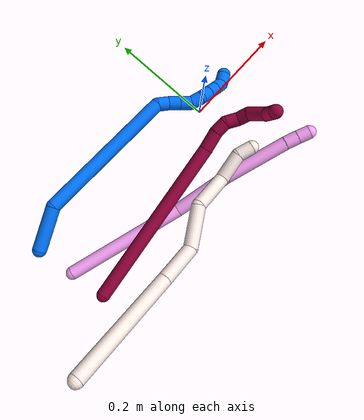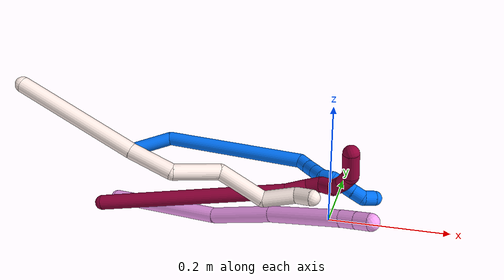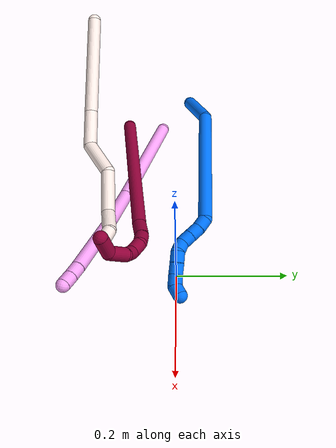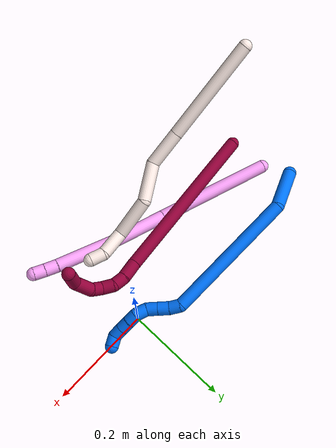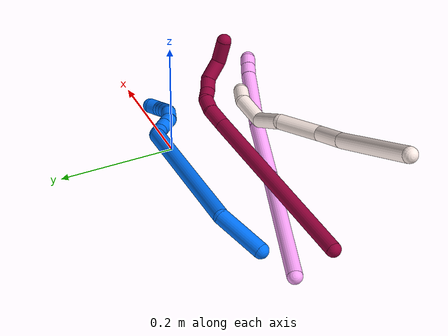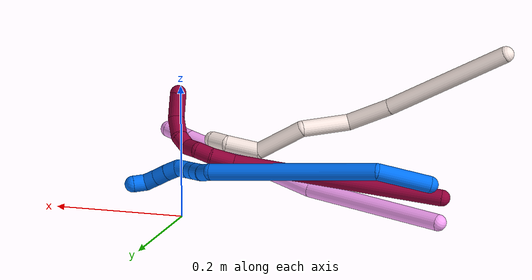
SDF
<sdf version="1.7">
 <world name="default">
  <model name="4">
   <static>0</static>
   <link name="4">
    <collision name="collision-cylinder-e_1_1_4">
     <pose>0.084315 -0.027856 -0.070144 2.76356 0.840679 2.33281</pose>
     <geometry><cylinder><radius>0.0125</radius><length>0.22632</length></cylinder></geometry>
     <surface>
      <friction><ode><mu>1.16</mu><mu2>1.16</mu2><slip1>0</slip1><slip2>0</slip2></ode></friction>
      <contact><ode><kp>1e+06</kp><kd>1</kd><max_vel>0</max_vel><min_depth>0.001</min_depth></ode></contact>
     </surface>
    </collision>
    <visual name="visual-cylinder-e_1_1_4">
     <pose>0.084315 -0.027856 -0.070144 2.76356 0.840679 2.33281</pose>
     <geometry><cylinder><radius>0.0125</radius><length>0.22632</length></cylinder></geometry>
     <material><ambient>1 0.65098 0.996078 1</ambient></material>
    </visual>
    <collision name="collision-cylinder-e_2_4_5">
     <pose>0.214124 -0.0688 -0.16617 2.67341 1.00326 2.32128</pose>
     <geometry><cylinder><radius>0.0125</radius><length>0.107903</length></cylinder></geometry>
     <surface>
      <friction><ode><mu>1.16</mu><mu2>1.16</mu2><slip1>0</slip1><slip2>0</slip2></ode></friction>
      <contact><ode><kp>1e+06</kp><kd>1</kd><max_vel>0</max_vel><min_depth>0.001</min_depth></ode></contact>
     </surface>
    </collision>
    <visual name="visual-cylinder-e_2_4_5">
     <pose>0.214124 -0.0688 -0.16617 2.67341 1.00326 2.32128</pose>
     <geometry><cylinder><radius>0.0125</radius><length>0.107903</length></cylinder></geometry>
     <material><ambient>1 0.65098 0.996078 1</ambient></material>
    </visual>
    <collision name="collision-cylinder-e_3_5_6">
     <pose>0.307087 -0.100001 -0.223586 2.6202 0.917065 2.15067</pose>
     <geometry><cylinder><radius>0.0125</radius><length>0.119598</length></cylinder></geometry>
     <surface>
      <friction><ode><mu>1.16</mu><mu2>1.16</mu2><slip1>0</slip1><slip2>0</slip2></ode></friction>
      <contact><ode><kp>1e+06</kp><kd>1</kd><max_vel>0</max_vel><min_depth>0.001</min_depth></ode></contact>
     </surface>
    </collision>
    <visual name="visual-cylinder-e_3_5_6">
     <pose>0.307087 -0.100001 -0.223586 2.6202 0.917065 2.15067</pose>
     <geometry><cylinder><radius>0.0125</radius><length>0.119598</length></cylinder></geometry>
     <material><ambient>1 0.65098 0.996078 1</ambient></material>
    </visual>
    <collision name="collision-cylinder-e_4_6_7">
     <pose>0.363669 -0.122438 -0.261773 2.56537 0.854468 1.98753</pose>
     <geometry><cylinder><radius>0.0125</radius><length>0.024163</length></cylinder></geometry>
     <surface>
      <friction><ode><mu>1.16</mu><mu2>1.16</mu2><slip1>0</slip1><slip2>0</slip2></ode></friction>
      <contact><ode><kp>1e+06</kp><kd>1</kd><max_vel>0</max_vel><min_depth>0.001</min_depth></ode></contact>
     </surface>
    </collision>
    <visual name="visual-cylinder-e_4_6_7">
     <pose>0.363669 -0.122438 -0.261773 2.56537 0.854468 1.98753</pose>
     <geometry><cylinder><radius>0.0125</radius><length>0.024163</length></cylinder></geometry>
     <material><ambient>1 0.65098 0.996078 1</ambient></material>
    </visual>
    <collision name="collision-cylinder-e_5_7_2">
     <pose>0.380979 -0.131045 -0.274391 2.51872 0.840161 1.89264</pose>
     <geometry><cylinder><radius>0.0125</radius><length>0.022015</length></cylinder></geometry>
     <surface>
      <friction><ode><mu>1.16</mu><mu2>1.16</mu2><slip1>0</slip1><slip2>0</slip2></ode></friction>
      <contact><ode><kp>1e+06</kp><kd>1</kd><max_vel>0</max_vel><min_depth>0.001</min_depth></ode></contact>
     </surface>
    </collision>
    <visual name="visual-cylinder-e_5_7_2">
     <pose>0.380979 -0.131045 -0.274391 2.51872 0.840161 1.89264</pose>
     <geometry><cylinder><radius>0.0125</radius><length>0.022015</length></cylinder></geometry>
     <material><ambient>1 0.65098 0.996078 1</ambient></material>
    </visual>
    <collision name="collision-sphere-2">
     <pose>0.389177 -0.135331 -0.280357 0 -0 0</pose>
     <geometry><sphere><radius>0.0125</radius></sphere></geometry>
     <surface>
      <friction><ode><mu>1.16</mu><mu2>1.16</mu2><slip1>0</slip1><slip2>0</slip2></ode></friction>
      <contact><ode><kp>1e+06</kp><kd>1</kd><max_vel>0</max_vel><min_depth>0.001</min_depth></ode></contact>
     </surface>
    </collision>
    <visual name="visual-sphere-2">
     <pose>0.389177 -0.135331 -0.280357 0 -0 0</pose>
     <geometry><sphere><radius>0.0125</radius></sphere></geometry>
     <material><ambient>1 0.65098 0.996078 1</ambient></material>
    </visual>
    <collision name="collision-sphere-7">
     <pose>0.372781 -0.12676 -0.268425 0 -0 0</pose>
     <geometry><sphere><radius>0.0125</radius></sphere></geometry>
     <surface>
      <friction><ode><mu>1.16</mu><mu2>1.16</mu2><slip1>0</slip1><slip2>0</slip2></ode></friction>
      <contact><ode><kp>1e+06</kp><kd>1</kd><max_vel>0</max_vel><min_depth>0.001</min_depth></ode></contact>
     </surface>
    </collision>
    <visual name="visual-sphere-7">
     <pose>0.372781 -0.12676 -0.268425 0 -0 0</pose>
     <geometry><sphere><radius>0.0125</radius></sphere></geometry>
     <material><ambient>1 0.65098 0.996078 1</ambient></material>
    </visual>
    <collision name="collision-sphere-6">
     <pose>0.354557 -0.118115 -0.255121 0 -0 0</pose>
     <geometry><sphere><radius>0.0125</radius></sphere></geometry>
     <surface>
      <friction><ode><mu>1.16</mu><mu2>1.16</mu2><slip1>0</slip1><slip2>0</slip2></ode></friction>
      <contact><ode><kp>1e+06</kp><kd>1</kd><max_vel>0</max_vel><min_depth>0.001</min_depth></ode></contact>
     </surface>
    </collision>
    <visual name="visual-sphere-6">
     <pose>0.354557 -0.118115 -0.255121 0 -0 0</pose>
     <geometry><sphere><radius>0.0125</radius></sphere></geometry>
     <material><ambient>1 0.65098 0.996078 1</ambient></material>
    </visual>
    <collision name="collision-sphere-5">
     <pose>0.259617 -0.081888 -0.192051 0 -0 0</pose>
     <geometry><sphere><radius>0.0125</radius></sphere></geometry>
     <surface>
      <friction><ode><mu>1.16</mu><mu2>1.16</mu2><slip1>0</slip1><slip2>0</slip2></ode></friction>
      <contact><ode><kp>1e+06</kp><kd>1</kd><max_vel>0</max_vel><min_depth>0.001</min_depth></ode></contact>
     </surface>
    </collision>
    <visual name="visual-sphere-5">
     <pose>0.259617 -0.081888 -0.192051 0 -0 0</pose>
     <geometry><sphere><radius>0.0125</radius></sphere></geometry>
     <material><ambient>1 0.65098 0.996078 1</ambient></material>
    </visual>
    <collision name="collision-sphere-1">
     <geometry><sphere><radius>0.0125</radius></sphere></geometry>
     <surface>
      <friction><ode><mu>1.16</mu><mu2>1.16</mu2><slip1>0</slip1><slip2>0</slip2></ode></friction>
      <contact><ode><kp>1e+06</kp><kd>1</kd><max_vel>0</max_vel><min_depth>0.001</min_depth></ode></contact>
     </surface>
    </collision>
    <visual name="visual-sphere-1">
     <geometry><sphere><radius>0.0125</radius></sphere></geometry>
     <material><ambient>1 0.65098 0.996078 1</ambient></material>
    </visual>
    <collision name="collision-sphere-4">
     <pose>0.16863 -0.055712 -0.140288 0 -0 0</pose>
     <geometry><sphere><radius>0.0125</radius></sphere></geometry>
     <surface>
      <friction><ode><mu>1.16</mu><mu2>1.16</mu2><slip1>0</slip1><slip2>0</slip2></ode></friction>
      <contact><ode><kp>1e+06</kp><kd>1</kd><max_vel>0</max_vel><min_depth>0.001</min_depth></ode></contact>
     </surface>
    </collision>
    <visual name="visual-sphere-4">
     <pose>0.16863 -0.055712 -0.140288 0 -0 0</pose>
     <geometry><sphere><radius>0.0125</radius></sphere></geometry>
     <material><ambient>1 0.65098 0.996078 1</ambient></material>
    </visual>
    <inertial>
     <pose>0.192177 -0.063063 -0.145824 0 -0 0</pose>
     <mass>0.5</mass>
     <inertia>
      <ixx>8.2e-05</ixx>
      <ixy>0</ixy>
      <ixz>0</ixz>
      <iyy>0.001617</iyy>
      <iyz>0</iyz>
      <izz>-0.000647</izz>
     </inertia>
    </inertial>
   </link>
   <pose>-0.387698 -0.032394 0.011499 -0.366137 -0.674695 0.167584</pose>
  </model>
  <model name="8">
   <static>0</static>
   <link name="8">
    <collision name="collision-cylinder-e_1_1_4">
     <pose>0.15341 -0.000258 -0.044403 3.13579 1.28905 3.13387</pose>
     <geometry><cylinder><radius>0.0125</radius><length>0.319415</length></cylinder></geometry>
     <surface>
      <friction><ode><mu>1.16</mu><mu2>1.16</mu2><slip1>0</slip1><slip2>0</slip2></ode></friction>
      <contact><ode><kp>1e+06</kp><kd>1</kd><max_vel>0</max_vel><min_depth>0.001</min_depth></ode></contact>
     </surface>
    </collision>
    <visual name="visual-cylinder-e_1_1_4">
     <pose>0.15341 -0.000258 -0.044403 3.13579 1.28905 3.13387</pose>
     <geometry><cylinder><radius>0.0125</radius><length>0.319415</length></cylinder></geometry>
     <material><ambient>0.584314 0 0.227451 1</ambient></material>
    </visual>
    <collision name="collision-cylinder-e_2_4_5">
     <pose>0.324599 -0.000673 -0.091149 3.07437 1.4395 3.06492</pose>
     <geometry><cylinder><radius>0.0125</radius><length>0.035865</length></cylinder></geometry>
     <surface>
      <friction><ode><mu>1.16</mu><mu2>1.16</mu2><slip1>0</slip1><slip2>0</slip2></ode></friction>
      <contact><ode><kp>1e+06</kp><kd>1</kd><max_vel>0</max_vel><min_depth>0.001</min_depth></ode></contact>
     </surface>
    </collision>
    <visual name="visual-cylinder-e_2_4_5">
     <pose>0.324599 -0.000673 -0.091149 3.07437 1.4395 3.06492</pose>
     <geometry><cylinder><radius>0.0125</radius><length>0.035865</length></cylinder></geometry>
     <material><ambient>0.584314 0 0.227451 1</ambient></material>
    </visual>
    <collision name="collision-cylinder-e_3_5_6">
     <pose>0.35366 -0.003765 -0.095977 2.27353 1.24232 1.99213</pose>
     <geometry><cylinder><radius>0.0125</radius><length>0.023841</length></cylinder></geometry>
     <surface>
      <friction><ode><mu>1.16</mu><mu2>1.16</mu2><slip1>0</slip1><slip2>0</slip2></ode></friction>
      <contact><ode><kp>1e+06</kp><kd>1</kd><max_vel>0</max_vel><min_depth>0.001</min_depth></ode></contact>
     </surface>
    </collision>
    <visual name="visual-cylinder-e_3_5_6">
     <pose>0.35366 -0.003765 -0.095977 2.27353 1.24232 1.99213</pose>
     <geometry><cylinder><radius>0.0125</radius><length>0.023841</length></cylinder></geometry>
     <material><ambient>0.584314 0 0.227451 1</ambient></material>
    </visual>
    <collision name="collision-cylinder-e_4_6_7">
     <pose>0.372825 -0.012988 -0.105071 2.38103 0.712551 1.49937</pose>
     <geometry><cylinder><radius>0.0125</radius><length>0.02411</length></cylinder></geometry>
     <surface>
      <friction><ode><mu>1.16</mu><mu2>1.16</mu2><slip1>0</slip1><slip2>0</slip2></ode></friction>
      <contact><ode><kp>1e+06</kp><kd>1</kd><max_vel>0</max_vel><min_depth>0.001</min_depth></ode></contact>
     </surface>
    </collision>
    <visual name="visual-cylinder-e_4_6_7">
     <pose>0.372825 -0.012988 -0.105071 2.38103 0.712551 1.49937</pose>
     <geometry><cylinder><radius>0.0125</radius><length>0.02411</length></cylinder></geometry>
     <material><ambient>0.584314 0 0.227451 1</ambient></material>
    </visual>
    <collision name="collision-cylinder-e_5_7_8">
     <pose>0.389023 -0.026352 -0.111588 1.55791 0.865769 0.855991</pose>
     <geometry><cylinder><radius>0.0125</radius><length>0.02184</length></cylinder></geometry>
     <surface>
      <friction><ode><mu>1.16</mu><mu2>1.16</mu2><slip1>0</slip1><slip2>0</slip2></ode></friction>
      <contact><ode><kp>1e+06</kp><kd>1</kd><max_vel>0</max_vel><min_depth>0.001</min_depth></ode></contact>
     </surface>
    </collision>
    <visual name="visual-cylinder-e_5_7_8">
     <pose>0.389023 -0.026352 -0.111588 1.55791 0.865769 0.855991</pose>
     <geometry><cylinder><radius>0.0125</radius><length>0.02184</length></cylinder></geometry>
     <material><ambient>0.584314 0 0.227451 1</ambient></material>
    </visual>
    <collision name="collision-cylinder-e_6_8_9">
     <pose>0.404263 -0.050053 -0.110899 1.53484 0.39438 0.38079</pose>
     <geometry><cylinder><radius>0.0125</radius><length>0.036037</length></cylinder></geometry>
     <surface>
      <friction><ode><mu>1.16</mu><mu2>1.16</mu2><slip1>0</slip1><slip2>0</slip2></ode></friction>
      <contact><ode><kp>1e+06</kp><kd>1</kd><max_vel>0</max_vel><min_depth>0.001</min_depth></ode></contact>
     </surface>
    </collision>
    <visual name="visual-cylinder-e_6_8_9">
     <pose>0.404263 -0.050053 -0.110899 1.53484 0.39438 0.38079</pose>
     <geometry><cylinder><radius>0.0125</radius><length>0.036037</length></cylinder></geometry>
     <material><ambient>0.584314 0 0.227451 1</ambient></material>
    </visual>
    <collision name="collision-cylinder-e_7_9_2">
     <pose>0.416743 -0.079918 -0.097188 0.790207 0.289781 0.121551</pose>
     <geometry><cylinder><radius>0.0125</radius><length>0.038891</length></cylinder></geometry>
     <surface>
      <friction><ode><mu>1.16</mu><mu2>1.16</mu2><slip1>0</slip1><slip2>0</slip2></ode></friction>
      <contact><ode><kp>1e+06</kp><kd>1</kd><max_vel>0</max_vel><min_depth>0.001</min_depth></ode></contact>
     </surface>
    </collision>
    <visual name="visual-cylinder-e_7_9_2">
     <pose>0.416743 -0.079918 -0.097188 0.790207 0.289781 0.121551</pose>
     <geometry><cylinder><radius>0.0125</radius><length>0.038891</length></cylinder></geometry>
     <material><ambient>0.584314 0 0.227451 1</ambient></material>
    </visual>
    <collision name="collision-sphere-2">
     <pose>0.422299 -0.093158 -0.084074 0 -0 0</pose>
     <geometry><sphere><radius>0.0125</radius></sphere></geometry>
     <surface>
      <friction><ode><mu>1.16</mu><mu2>1.16</mu2><slip1>0</slip1><slip2>0</slip2></ode></friction>
      <contact><ode><kp>1e+06</kp><kd>1</kd><max_vel>0</max_vel><min_depth>0.001</min_depth></ode></contact>
     </surface>
    </collision>
    <visual name="visual-sphere-2">
     <pose>0.422299 -0.093158 -0.084074 0 -0 0</pose>
     <geometry><sphere><radius>0.0125</radius></sphere></geometry>
     <material><ambient>0.584314 0 0.227451 1</ambient></material>
    </visual>
    <collision name="collision-sphere-9">
     <pose>0.411186 -0.066678 -0.110301 0 -0 0</pose>
     <geometry><sphere><radius>0.0125</radius></sphere></geometry>
     <surface>
      <friction><ode><mu>1.16</mu><mu2>1.16</mu2><slip1>0</slip1><slip2>0</slip2></ode></friction>
      <contact><ode><kp>1e+06</kp><kd>1</kd><max_vel>0</max_vel><min_depth>0.001</min_depth></ode></contact>
     </surface>
    </collision>
    <visual name="visual-sphere-9">
     <pose>0.411186 -0.066678 -0.110301 0 -0 0</pose>
     <geometry><sphere><radius>0.0125</radius></sphere></geometry>
     <material><ambient>0.584314 0 0.227451 1</ambient></material>
    </visual>
    <collision name="collision-sphere-4">
     <pose>0.306821 -0.000516 -0.088807 0 -0 0</pose>
     <geometry><sphere><radius>0.0125</radius></sphere></geometry>
     <surface>
      <friction><ode><mu>1.16</mu><mu2>1.16</mu2><slip1>0</slip1><slip2>0</slip2></ode></friction>
      <contact><ode><kp>1e+06</kp><kd>1</kd><max_vel>0</max_vel><min_depth>0.001</min_depth></ode></contact>
     </surface>
    </collision>
    <visual name="visual-sphere-4">
     <pose>0.306821 -0.000516 -0.088807 0 -0 0</pose>
     <geometry><sphere><radius>0.0125</radius></sphere></geometry>
     <material><ambient>0.584314 0 0.227451 1</ambient></material>
    </visual>
    <collision name="collision-sphere-1">
     <geometry><sphere><radius>0.0125</radius></sphere></geometry>
     <surface>
      <friction><ode><mu>1.16</mu><mu2>1.16</mu2><slip1>0</slip1><slip2>0</slip2></ode></friction>
      <contact><ode><kp>1e+06</kp><kd>1</kd><max_vel>0</max_vel><min_depth>0.001</min_depth></ode></contact>
     </surface>
    </collision>
    <visual name="visual-sphere-1">
     <geometry><sphere><radius>0.0125</radius></sphere></geometry>
     <material><ambient>0.584314 0 0.227451 1</ambient></material>
    </visual>
    <collision name="collision-sphere-8">
     <pose>0.397339 -0.033429 -0.111497 0 -0 0</pose>
     <geometry><sphere><radius>0.0125</radius></sphere></geometry>
     <surface>
      <friction><ode><mu>1.16</mu><mu2>1.16</mu2><slip1>0</slip1><slip2>0</slip2></ode></friction>
      <contact><ode><kp>1e+06</kp><kd>1</kd><max_vel>0</max_vel><min_depth>0.001</min_depth></ode></contact>
     </surface>
    </collision>
    <visual name="visual-sphere-8">
     <pose>0.397339 -0.033429 -0.111497 0 -0 0</pose>
     <geometry><sphere><radius>0.0125</radius></sphere></geometry>
     <material><ambient>0.584314 0 0.227451 1</ambient></material>
    </visual>
    <collision name="collision-sphere-5">
     <pose>0.342377 -0.000831 -0.093491 0 -0 0</pose>
     <geometry><sphere><radius>0.0125</radius></sphere></geometry>
     <surface>
      <friction><ode><mu>1.16</mu><mu2>1.16</mu2><slip1>0</slip1><slip2>0</slip2></ode></friction>
      <contact><ode><kp>1e+06</kp><kd>1</kd><max_vel>0</max_vel><min_depth>0.001</min_depth></ode></contact>
     </surface>
    </collision>
    <visual name="visual-sphere-5">
     <pose>0.342377 -0.000831 -0.093491 0 -0 0</pose>
     <geometry><sphere><radius>0.0125</radius></sphere></geometry>
     <material><ambient>0.584314 0 0.227451 1</ambient></material>
    </visual>
    <collision name="collision-sphere-6">
     <pose>0.364943 -0.0067 -0.098462 0 -0 0</pose>
     <geometry><sphere><radius>0.0125</radius></sphere></geometry>
     <surface>
      <friction><ode><mu>1.16</mu><mu2>1.16</mu2><slip1>0</slip1><slip2>0</slip2></ode></friction>
      <contact><ode><kp>1e+06</kp><kd>1</kd><max_vel>0</max_vel><min_depth>0.001</min_depth></ode></contact>
     </surface>
    </collision>
    <visual name="visual-sphere-6">
     <pose>0.364943 -0.0067 -0.098462 0 -0 0</pose>
     <geometry><sphere><radius>0.0125</radius></sphere></geometry>
     <material><ambient>0.584314 0 0.227451 1</ambient></material>
    </visual>
    <collision name="collision-sphere-7">
     <pose>0.380706 -0.019276 -0.111679 0 -0 0</pose>
     <geometry><sphere><radius>0.0125</radius></sphere></geometry>
     <surface>
      <friction><ode><mu>1.16</mu><mu2>1.16</mu2><slip1>0</slip1><slip2>0</slip2></ode></friction>
      <contact><ode><kp>1e+06</kp><kd>1</kd><max_vel>0</max_vel><min_depth>0.001</min_depth></ode></contact>
     </surface>
    </collision>
    <visual name="visual-sphere-7">
     <pose>0.380706 -0.019276 -0.111679 0 -0 0</pose>
     <geometry><sphere><radius>0.0125</radius></sphere></geometry>
     <material><ambient>0.584314 0 0.227451 1</ambient></material>
    </visual>
    <inertial>
     <pose>0.234673 -0.011994 -0.064974 0 -0 0</pose>
     <mass>0.5</mass>
     <inertia>
      <ixx>-0.000703</ixx>
      <ixy>0</ixy>
      <ixz>0</ixz>
      <iyy>0.002747</iyy>
      <iyz>0</iyz>
      <izz>-0.002624</izz>
     </inertia>
    </inertial>
   </link>
   <pose>-0.376787 -0.103054 0.030328 -0.526941 -0.375968 0.259774</pose>
  </model>
  <model name="11">
   <static>0</static>
   <link name="11">
    <collision name="collision-cylinder-e_1_1_4">
     <pose>-0.004505 0.010578 -0.099261 -3.03543 -0.045099 0.80285</pose>
     <geometry><cylinder><radius>0.0125</radius><length>0.199849</length></cylinder></geometry>
     <surface>
      <friction><ode><mu>1.16</mu><mu2>1.16</mu2><slip1>0</slip1><slip2>0</slip2></ode></friction>
      <contact><ode><kp>1e+06</kp><kd>1</kd><max_vel>0</max_vel><min_depth>0.001</min_depth></ode></contact>
     </surface>
    </collision>
    <visual name="visual-cylinder-e_1_1_4">
     <pose>-0.004505 0.010578 -0.099261 -3.03543 -0.045099 0.80285</pose>
     <geometry><cylinder><radius>0.0125</radius><length>0.199849</length></cylinder></geometry>
     <material><ambient>1 0.933333 0.909804 1</ambient></material>
    </visual>
    <collision name="collision-cylinder-e_2_4_5">
     <pose>-0.0083 0.024022 -0.233475 -3.05976 0.020235 -0.484554</pose>
     <geometry><cylinder><radius>0.0125</radius><length>0.070155</length></cylinder></geometry>
     <surface>
      <friction><ode><mu>1.16</mu><mu2>1.16</mu2><slip1>0</slip1><slip2>0</slip2></ode></friction>
      <contact><ode><kp>1e+06</kp><kd>1</kd><max_vel>0</max_vel><min_depth>0.001</min_depth></ode></contact>
     </surface>
    </collision>
    <visual name="visual-cylinder-e_2_4_5">
     <pose>-0.0083 0.024022 -0.233475 -3.05976 0.020235 -0.484554</pose>
     <geometry><cylinder><radius>0.0125</radius><length>0.070155</length></cylinder></geometry>
     <material><ambient>1 0.933333 0.909804 1</ambient></material>
    </visual>
    <collision name="collision-cylinder-e_3_5_6">
     <pose>0.011505 0.038624 -0.297707 -2.76042 0.54438 -1.93199</pose>
     <geometry><cylinder><radius>0.0125</radius><length>0.073746</length></cylinder></geometry>
     <surface>
      <friction><ode><mu>1.16</mu><mu2>1.16</mu2><slip1>0</slip1><slip2>0</slip2></ode></friction>
      <contact><ode><kp>1e+06</kp><kd>1</kd><max_vel>0</max_vel><min_depth>0.001</min_depth></ode></contact>
     </surface>
    </collision>
    <visual name="visual-cylinder-e_3_5_6">
     <pose>0.011505 0.038624 -0.297707 -2.76042 0.54438 -1.93199</pose>
     <geometry><cylinder><radius>0.0125</radius><length>0.073746</length></cylinder></geometry>
     <material><ambient>1 0.933333 0.909804 1</ambient></material>
    </visual>
    <collision name="collision-cylinder-e_4_6_7">
     <pose>0.028137 0.056357 -0.365347 -2.98647 -0.063384 0.774625</pose>
     <geometry><cylinder><radius>0.0125</radius><length>0.07781</length></cylinder></geometry>
     <surface>
      <friction><ode><mu>1.16</mu><mu2>1.16</mu2><slip1>0</slip1><slip2>0</slip2></ode></friction>
      <contact><ode><kp>1e+06</kp><kd>1</kd><max_vel>0</max_vel><min_depth>0.001</min_depth></ode></contact>
     </surface>
    </collision>
    <visual name="visual-cylinder-e_4_6_7">
     <pose>0.028137 0.056357 -0.365347 -2.98647 -0.063384 0.774625</pose>
     <geometry><cylinder><radius>0.0125</radius><length>0.07781</length></cylinder></geometry>
     <material><ambient>1 0.933333 0.909804 1</ambient></material>
    </visual>
    <collision name="collision-cylinder-e_5_7_8">
     <pose>0.039459 0.058131 -0.424752 2.94347 0.570927 2.48854</pose>
     <geometry><cylinder><radius>0.0125</radius><length>0.051021</length></cylinder></geometry>
     <surface>
      <friction><ode><mu>1.16</mu><mu2>1.16</mu2><slip1>0</slip1><slip2>0</slip2></ode></friction>
      <contact><ode><kp>1e+06</kp><kd>1</kd><max_vel>0</max_vel><min_depth>0.001</min_depth></ode></contact>
     </surface>
    </collision>
    <visual name="visual-cylinder-e_5_7_8">
     <pose>0.039459 0.058131 -0.424752 2.94347 0.570927 2.48854</pose>
     <geometry><cylinder><radius>0.0125</radius><length>0.051021</length></cylinder></geometry>
     <material><ambient>1 0.933333 0.909804 1</ambient></material>
    </visual>
    <collision name="collision-cylinder-e_6_8_2">
     <pose>0.055826 0.04746 -0.457618 2.6424 0.189362 0.71323</pose>
     <geometry><cylinder><radius>0.0125</radius><length>0.027419</length></cylinder></geometry>
     <surface>
      <friction><ode><mu>1.16</mu><mu2>1.16</mu2><slip1>0</slip1><slip2>0</slip2></ode></friction>
      <contact><ode><kp>1e+06</kp><kd>1</kd><max_vel>0</max_vel><min_depth>0.001</min_depth></ode></contact>
     </surface>
    </collision>
    <visual name="visual-cylinder-e_6_8_2">
     <pose>0.055826 0.04746 -0.457618 2.6424 0.189362 0.71323</pose>
     <geometry><cylinder><radius>0.0125</radius><length>0.027419</length></cylinder></geometry>
     <material><ambient>1 0.933333 0.909804 1</ambient></material>
    </visual>
    <collision name="collision-sphere-2">
     <pose>0.058406 0.041015 -0.469439 0 -0 0</pose>
     <geometry><sphere><radius>0.0125</radius></sphere></geometry>
     <surface>
      <friction><ode><mu>1.16</mu><mu2>1.16</mu2><slip1>0</slip1><slip2>0</slip2></ode></friction>
      <contact><ode><kp>1e+06</kp><kd>1</kd><max_vel>0</max_vel><min_depth>0.001</min_depth></ode></contact>
     </surface>
    </collision>
    <visual name="visual-sphere-2">
     <pose>0.058406 0.041015 -0.469439 0 -0 0</pose>
     <geometry><sphere><radius>0.0125</radius></sphere></geometry>
     <material><ambient>1 0.933333 0.909804 1</ambient></material>
    </visual>
    <collision name="collision-sphere-4">
     <pose>-0.00901 0.021156 -0.198522 0 -0 0</pose>
     <geometry><sphere><radius>0.0125</radius></sphere></geometry>
     <surface>
      <friction><ode><mu>1.16</mu><mu2>1.16</mu2><slip1>0</slip1><slip2>0</slip2></ode></friction>
      <contact><ode><kp>1e+06</kp><kd>1</kd><max_vel>0</max_vel><min_depth>0.001</min_depth></ode></contact>
     </surface>
    </collision>
    <visual name="visual-sphere-4">
     <pose>-0.00901 0.021156 -0.198522 0 -0 0</pose>
     <geometry><sphere><radius>0.0125</radius></sphere></geometry>
     <material><ambient>1 0.933333 0.909804 1</ambient></material>
    </visual>
    <collision name="collision-sphere-1">
     <geometry><sphere><radius>0.0125</radius></sphere></geometry>
     <surface>
      <friction><ode><mu>1.16</mu><mu2>1.16</mu2><slip1>0</slip1><slip2>0</slip2></ode></friction>
      <contact><ode><kp>1e+06</kp><kd>1</kd><max_vel>0</max_vel><min_depth>0.001</min_depth></ode></contact>
     </surface>
    </collision>
    <visual name="visual-sphere-1">
     <geometry><sphere><radius>0.0125</radius></sphere></geometry>
     <material><ambient>1 0.933333 0.909804 1</ambient></material>
    </visual>
    <collision name="collision-sphere-8">
     <pose>0.053245 0.053906 -0.445797 0 -0 0</pose>
     <geometry><sphere><radius>0.0125</radius></sphere></geometry>
     <surface>
      <friction><ode><mu>1.16</mu><mu2>1.16</mu2><slip1>0</slip1><slip2>0</slip2></ode></friction>
      <contact><ode><kp>1e+06</kp><kd>1</kd><max_vel>0</max_vel><min_depth>0.001</min_depth></ode></contact>
     </surface>
    </collision>
    <visual name="visual-sphere-8">
     <pose>0.053245 0.053906 -0.445797 0 -0 0</pose>
     <geometry><sphere><radius>0.0125</radius></sphere></geometry>
     <material><ambient>1 0.933333 0.909804 1</ambient></material>
    </visual>
    <collision name="collision-sphere-5">
     <pose>-0.00759 0.026889 -0.268428 0 -0 0</pose>
     <geometry><sphere><radius>0.0125</radius></sphere></geometry>
     <surface>
      <friction><ode><mu>1.16</mu><mu2>1.16</mu2><slip1>0</slip1><slip2>0</slip2></ode></friction>
      <contact><ode><kp>1e+06</kp><kd>1</kd><max_vel>0</max_vel><min_depth>0.001</min_depth></ode></contact>
     </surface>
    </collision>
    <visual name="visual-sphere-5">
     <pose>-0.00759 0.026889 -0.268428 0 -0 0</pose>
     <geometry><sphere><radius>0.0125</radius></sphere></geometry>
     <material><ambient>1 0.933333 0.909804 1</ambient></material>
    </visual>
    <collision name="collision-sphere-6">
     <pose>0.030601 0.050358 -0.326986 0 -0 0</pose>
     <geometry><sphere><radius>0.0125</radius></sphere></geometry>
     <surface>
      <friction><ode><mu>1.16</mu><mu2>1.16</mu2><slip1>0</slip1><slip2>0</slip2></ode></friction>
      <contact><ode><kp>1e+06</kp><kd>1</kd><max_vel>0</max_vel><min_depth>0.001</min_depth></ode></contact>
     </surface>
    </collision>
    <visual name="visual-sphere-6">
     <pose>0.030601 0.050358 -0.326986 0 -0 0</pose>
     <geometry><sphere><radius>0.0125</radius></sphere></geometry>
     <material><ambient>1 0.933333 0.909804 1</ambient></material>
    </visual>
    <collision name="collision-sphere-7">
     <pose>0.025673 0.062355 -0.403707 0 -0 0</pose>
     <geometry><sphere><radius>0.0125</radius></sphere></geometry>
     <surface>
      <friction><ode><mu>1.16</mu><mu2>1.16</mu2><slip1>0</slip1><slip2>0</slip2></ode></friction>
      <contact><ode><kp>1e+06</kp><kd>1</kd><max_vel>0</max_vel><min_depth>0.001</min_depth></ode></contact>
     </surface>
    </collision>
    <visual name="visual-sphere-7">
     <pose>0.025673 0.062355 -0.403707 0 -0 0</pose>
     <geometry><sphere><radius>0.0125</radius></sphere></geometry>
     <material><ambient>1 0.933333 0.909804 1</ambient></material>
    </visual>
    <inertial>
     <pose>0.010198 0.0306 -0.241635 0 -0 0</pose>
     <mass>0.5</mass>
     <inertia>
      <ixx>0.00099</ixx>
      <ixy>0</ixy>
      <ixz>0</ixz>
      <iyy>-1.1e-05</iyy>
      <iyz>0</iyz>
      <izz>-0.000119</izz>
     </inertia>
    </inertial>
   </link>
   <pose>-0.457051 -0.165839 0.242372 -0.982452 -0.844063 1.04692</pose>
  </model>
  <model name="14">
   <static>0</static>
   <link name="14">
    <collision name="collision-cylinder-e_1_1_4">
     <pose>0.001841 -0.010028 -0.038844 2.88896 0.045854 0.357287</pose>
     <geometry><cylinder><radius>0.0125</radius><length>0.080319</length></cylinder></geometry>
     <surface>
      <friction><ode><mu>1.16</mu><mu2>1.16</mu2><slip1>0</slip1><slip2>0</slip2></ode></friction>
      <contact><ode><kp>1e+06</kp><kd>1</kd><max_vel>0</max_vel><min_depth>0.001</min_depth></ode></contact>
     </surface>
    </collision>
    <visual name="visual-cylinder-e_1_1_4">
     <pose>0.001841 -0.010028 -0.038844 2.88896 0.045854 0.357287</pose>
     <geometry><cylinder><radius>0.0125</radius><length>0.080319</length></cylinder></geometry>
     <material><ambient>0 0.462745 1 1</ambient></material>
    </visual>
    <collision name="collision-cylinder-e_2_4_5">
     <pose>0.060381 -0.00821 -0.191569 -3.03795 0.459812 -2.70541</pose>
     <geometry><cylinder><radius>0.0125</radius><length>0.25553</length></cylinder></geometry>
     <surface>
      <friction><ode><mu>1.16</mu><mu2>1.16</mu2><slip1>0</slip1><slip2>0</slip2></ode></friction>
      <contact><ode><kp>1e+06</kp><kd>1</kd><max_vel>0</max_vel><min_depth>0.001</min_depth></ode></contact>
     </surface>
    </collision>
    <visual name="visual-cylinder-e_2_4_5">
     <pose>0.060381 -0.00821 -0.191569 -3.03795 0.459812 -2.70541</pose>
     <geometry><cylinder><radius>0.0125</radius><length>0.25553</length></cylinder></geometry>
     <material><ambient>0 0.462745 1 1</ambient></material>
    </visual>
    <collision name="collision-cylinder-e_3_5_6">
     <pose>0.123377 0.009816 -0.311302 -2.32905 0.636904 -1.30772</pose>
     <geometry><cylinder><radius>0.0125</radius><length>0.021177</length></cylinder></geometry>
     <surface>
      <friction><ode><mu>1.16</mu><mu2>1.16</mu2><slip1>0</slip1><slip2>0</slip2></ode></friction>
      <contact><ode><kp>1e+06</kp><kd>1</kd><max_vel>0</max_vel><min_depth>0.001</min_depth></ode></contact>
     </surface>
    </collision>
    <visual name="visual-cylinder-e_3_5_6">
     <pose>0.123377 0.009816 -0.311302 -2.32905 0.636904 -1.30772</pose>
     <geometry><cylinder><radius>0.0125</radius><length>0.021177</length></cylinder></geometry>
     <material><ambient>0 0.462745 1 1</ambient></material>
    </visual>
    <collision name="collision-cylinder-e_4_6_7">
     <pose>0.134499 0.023813 -0.322674 -2.18551 0.467063 -0.860792</pose>
     <geometry><cylinder><radius>0.0125</radius><length>0.021432</length></cylinder></geometry>
     <surface>
      <friction><ode><mu>1.16</mu><mu2>1.16</mu2><slip1>0</slip1><slip2>0</slip2></ode></friction>
      <contact><ode><kp>1e+06</kp><kd>1</kd><max_vel>0</max_vel><min_depth>0.001</min_depth></ode></contact>
     </surface>
    </collision>
    <visual name="visual-cylinder-e_4_6_7">
     <pose>0.134499 0.023813 -0.322674 -2.18551 0.467063 -0.860792</pose>
     <geometry><cylinder><radius>0.0125</radius><length>0.021432</length></cylinder></geometry>
     <material><ambient>0 0.462745 1 1</ambient></material>
    </visual>
    <collision name="collision-cylinder-e_5_7_8">
     <pose>0.144024 0.039209 -0.333548 -2.18594 0.468716 -0.863973</pose>
     <geometry><cylinder><radius>0.0125</radius><length>0.020804</length></cylinder></geometry>
     <surface>
      <friction><ode><mu>1.16</mu><mu2>1.16</mu2><slip1>0</slip1><slip2>0</slip2></ode></friction>
      <contact><ode><kp>1e+06</kp><kd>1</kd><max_vel>0</max_vel><min_depth>0.001</min_depth></ode></contact>
     </surface>
    </collision>
    <visual name="visual-cylinder-e_5_7_8">
     <pose>0.144024 0.039209 -0.333548 -2.18594 0.468716 -0.863973</pose>
     <geometry><cylinder><radius>0.0125</radius><length>0.020804</length></cylinder></geometry>
     <material><ambient>0 0.462745 1 1</ambient></material>
    </visual>
    <collision name="collision-cylinder-e_6_8_9">
     <pose>0.152458 0.051091 -0.347542 -2.67949 0.369284 -1.34202</pose>
     <geometry><cylinder><radius>0.0125</radius><length>0.020697</length></cylinder></geometry>
     <surface>
      <friction><ode><mu>1.16</mu><mu2>1.16</mu2><slip1>0</slip1><slip2>0</slip2></ode></friction>
      <contact><ode><kp>1e+06</kp><kd>1</kd><max_vel>0</max_vel><min_depth>0.001</min_depth></ode></contact>
     </surface>
    </collision>
    <visual name="visual-cylinder-e_6_8_9">
     <pose>0.152458 0.051091 -0.347542 -2.67949 0.369284 -1.34202</pose>
     <geometry><cylinder><radius>0.0125</radius><length>0.020697</length></cylinder></geometry>
     <material><ambient>0 0.462745 1 1</ambient></material>
    </visual>
    <collision name="collision-cylinder-e_7_9_10">
     <pose>0.16361 0.056373 -0.362846 -2.99565 0.833385 -2.81423</pose>
     <geometry><cylinder><radius>0.0125</radius><length>0.02004</length></cylinder></geometry>
     <surface>
      <friction><ode><mu>1.16</mu><mu2>1.16</mu2><slip1>0</slip1><slip2>0</slip2></ode></friction>
      <contact><ode><kp>1e+06</kp><kd>1</kd><max_vel>0</max_vel><min_depth>0.001</min_depth></ode></contact>
     </surface>
    </collision>
    <visual name="visual-cylinder-e_7_9_10">
     <pose>0.16361 0.056373 -0.362846 -2.99565 0.833385 -2.81423</pose>
     <geometry><cylinder><radius>0.0125</radius><length>0.02004</length></cylinder></geometry>
     <material><ambient>0 0.462745 1 1</ambient></material>
    </visual>
    <collision name="collision-cylinder-e_8_10_11">
     <pose>0.178797 0.058401 -0.375718 -2.97435 0.88995 -2.79361</pose>
     <geometry><cylinder><radius>0.0125</radius><length>0.020001</length></cylinder></geometry>
     <surface>
      <friction><ode><mu>1.16</mu><mu2>1.16</mu2><slip1>0</slip1><slip2>0</slip2></ode></friction>
      <contact><ode><kp>1e+06</kp><kd>1</kd><max_vel>0</max_vel><min_depth>0.001</min_depth></ode></contact>
     </surface>
    </collision>
    <visual name="visual-cylinder-e_8_10_11">
     <pose>0.178797 0.058401 -0.375718 -2.97435 0.88995 -2.79361</pose>
     <geometry><cylinder><radius>0.0125</radius><length>0.020001</length></cylinder></geometry>
     <material><ambient>0 0.462745 1 1</ambient></material>
    </visual>
    <collision name="collision-cylinder-e_9_11_12">
     <pose>0.194191 0.060133 -0.388362 -3.03568 0.866797 -2.91349</pose>
     <geometry><cylinder><radius>0.0125</radius><length>0.02</length></cylinder></geometry>
     <surface>
      <friction><ode><mu>1.16</mu><mu2>1.16</mu2><slip1>0</slip1><slip2>0</slip2></ode></friction>
      <contact><ode><kp>1e+06</kp><kd>1</kd><max_vel>0</max_vel><min_depth>0.001</min_depth></ode></contact>
     </surface>
    </collision>
    <visual name="visual-cylinder-e_9_11_12">
     <pose>0.194191 0.060133 -0.388362 -3.03568 0.866797 -2.91349</pose>
     <geometry><cylinder><radius>0.0125</radius><length>0.02</length></cylinder></geometry>
     <material><ambient>0 0.462745 1 1</ambient></material>
    </visual>
    <collision name="collision-cylinder-e_10_12_2">
     <pose>0.205435 0.056943 -0.403276 2.71298 0.370634 1.42208</pose>
     <geometry><cylinder><radius>0.0125</radius><length>0.020001</length></cylinder></geometry>
     <surface>
      <friction><ode><mu>1.16</mu><mu2>1.16</mu2><slip1>0</slip1><slip2>0</slip2></ode></friction>
      <contact><ode><kp>1e+06</kp><kd>1</kd><max_vel>0</max_vel><min_depth>0.001</min_depth></ode></contact>
     </surface>
    </collision>
    <visual name="visual-cylinder-e_10_12_2">
     <pose>0.205435 0.056943 -0.403276 2.71298 0.370634 1.42208</pose>
     <geometry><cylinder><radius>0.0125</radius><length>0.020001</length></cylinder></geometry>
     <material><ambient>0 0.462745 1 1</ambient></material>
    </visual>
    <collision name="collision-sphere-2">
     <pose>0.209058 0.053069 -0.411754 0 -0 0</pose>
     <geometry><sphere><radius>0.0125</radius></sphere></geometry>
     <surface>
      <friction><ode><mu>1.16</mu><mu2>1.16</mu2><slip1>0</slip1><slip2>0</slip2></ode></friction>
      <contact><ode><kp>1e+06</kp><kd>1</kd><max_vel>0</max_vel><min_depth>0.001</min_depth></ode></contact>
     </surface>
    </collision>
    <visual name="visual-sphere-2">
     <pose>0.209058 0.053069 -0.411754 0 -0 0</pose>
     <geometry><sphere><radius>0.0125</radius></sphere></geometry>
     <material><ambient>0 0.462745 1 1</ambient></material>
    </visual>
    <collision name="collision-sphere-12">
     <pose>0.201813 0.060817 -0.394798 0 -0 0</pose>
     <geometry><sphere><radius>0.0125</radius></sphere></geometry>
     <surface>
      <friction><ode><mu>1.16</mu><mu2>1.16</mu2><slip1>0</slip1><slip2>0</slip2></ode></friction>
      <contact><ode><kp>1e+06</kp><kd>1</kd><max_vel>0</max_vel><min_depth>0.001</min_depth></ode></contact>
     </surface>
    </collision>
    <visual name="visual-sphere-12">
     <pose>0.201813 0.060817 -0.394798 0 -0 0</pose>
     <geometry><sphere><radius>0.0125</radius></sphere></geometry>
     <material><ambient>0 0.462745 1 1</ambient></material>
    </visual>
    <collision name="collision-sphere-11">
     <pose>0.186568 0.059449 -0.381925 0 -0 0</pose>
     <geometry><sphere><radius>0.0125</radius></sphere></geometry>
     <surface>
      <friction><ode><mu>1.16</mu><mu2>1.16</mu2><slip1>0</slip1><slip2>0</slip2></ode></friction>
      <contact><ode><kp>1e+06</kp><kd>1</kd><max_vel>0</max_vel><min_depth>0.001</min_depth></ode></contact>
     </surface>
    </collision>
    <visual name="visual-sphere-11">
     <pose>0.186568 0.059449 -0.381925 0 -0 0</pose>
     <geometry><sphere><radius>0.0125</radius></sphere></geometry>
     <material><ambient>0 0.462745 1 1</ambient></material>
    </visual>
    <collision name="collision-sphere-10">
     <pose>0.171027 0.057353 -0.369511 0 -0 0</pose>
     <geometry><sphere><radius>0.0125</radius></sphere></geometry>
     <surface>
      <friction><ode><mu>1.16</mu><mu2>1.16</mu2><slip1>0</slip1><slip2>0</slip2></ode></friction>
      <contact><ode><kp>1e+06</kp><kd>1</kd><max_vel>0</max_vel><min_depth>0.001</min_depth></ode></contact>
     </surface>
    </collision>
    <visual name="visual-sphere-10">
     <pose>0.171027 0.057353 -0.369511 0 -0 0</pose>
     <geometry><sphere><radius>0.0125</radius></sphere></geometry>
     <material><ambient>0 0.462745 1 1</ambient></material>
    </visual>
    <collision name="collision-sphere-9">
     <pose>0.156193 0.055393 -0.35618 0 -0 0</pose>
     <geometry><sphere><radius>0.0125</radius></sphere></geometry>
     <surface>
      <friction><ode><mu>1.16</mu><mu2>1.16</mu2><slip1>0</slip1><slip2>0</slip2></ode></friction>
      <contact><ode><kp>1e+06</kp><kd>1</kd><max_vel>0</max_vel><min_depth>0.001</min_depth></ode></contact>
     </surface>
    </collision>
    <visual name="visual-sphere-9">
     <pose>0.156193 0.055393 -0.35618 0 -0 0</pose>
     <geometry><sphere><radius>0.0125</radius></sphere></geometry>
     <material><ambient>0 0.462745 1 1</ambient></material>
    </visual>
    <collision name="collision-sphere-4">
     <pose>0.003682 -0.020055 -0.077688 0 -0 0</pose>
     <geometry><sphere><radius>0.0125</radius></sphere></geometry>
     <surface>
      <friction><ode><mu>1.16</mu><mu2>1.16</mu2><slip1>0</slip1><slip2>0</slip2></ode></friction>
      <contact><ode><kp>1e+06</kp><kd>1</kd><max_vel>0</max_vel><min_depth>0.001</min_depth></ode></contact>
     </surface>
    </collision>
    <visual name="visual-sphere-4">
     <pose>0.003682 -0.020055 -0.077688 0 -0 0</pose>
     <geometry><sphere><radius>0.0125</radius></sphere></geometry>
     <material><ambient>0 0.462745 1 1</ambient></material>
    </visual>
    <collision name="collision-sphere-1">
     <geometry><sphere><radius>0.0125</radius></sphere></geometry>
     <surface>
      <friction><ode><mu>1.16</mu><mu2>1.16</mu2><slip1>0</slip1><slip2>0</slip2></ode></friction>
      <contact><ode><kp>1e+06</kp><kd>1</kd><max_vel>0</max_vel><min_depth>0.001</min_depth></ode></contact>
     </surface>
    </collision>
    <visual name="visual-sphere-1">
     <geometry><sphere><radius>0.0125</radius></sphere></geometry>
     <material><ambient>0 0.462745 1 1</ambient></material>
    </visual>
    <collision name="collision-sphere-8">
     <pose>0.148723 0.046788 -0.338903 0 -0 0</pose>
     <geometry><sphere><radius>0.0125</radius></sphere></geometry>
     <surface>
      <friction><ode><mu>1.16</mu><mu2>1.16</mu2><slip1>0</slip1><slip2>0</slip2></ode></friction>
      <contact><ode><kp>1e+06</kp><kd>1</kd><max_vel>0</max_vel><min_depth>0.001</min_depth></ode></contact>
     </surface>
    </collision>
    <visual name="visual-sphere-8">
     <pose>0.148723 0.046788 -0.338903 0 -0 0</pose>
     <geometry><sphere><radius>0.0125</radius></sphere></geometry>
     <material><ambient>0 0.462745 1 1</ambient></material>
    </visual>
    <collision name="collision-sphere-5">
     <pose>0.11708 0.003636 -0.305449 0 -0 0</pose>
     <geometry><sphere><radius>0.0125</radius></sphere></geometry>
     <surface>
      <friction><ode><mu>1.16</mu><mu2>1.16</mu2><slip1>0</slip1><slip2>0</slip2></ode></friction>
      <contact><ode><kp>1e+06</kp><kd>1</kd><max_vel>0</max_vel><min_depth>0.001</min_depth></ode></contact>
     </surface>
    </collision>
    <visual name="visual-sphere-5">
     <pose>0.11708 0.003636 -0.305449 0 -0 0</pose>
     <geometry><sphere><radius>0.0125</radius></sphere></geometry>
     <material><ambient>0 0.462745 1 1</ambient></material>
    </visual>
    <collision name="collision-sphere-6">
     <pose>0.129674 0.015996 -0.317156 0 -0 0</pose>
     <geometry><sphere><radius>0.0125</radius></sphere></geometry>
     <surface>
      <friction><ode><mu>1.16</mu><mu2>1.16</mu2><slip1>0</slip1><slip2>0</slip2></ode></friction>
      <contact><ode><kp>1e+06</kp><kd>1</kd><max_vel>0</max_vel><min_depth>0.001</min_depth></ode></contact>
     </surface>
    </collision>
    <visual name="visual-sphere-6">
     <pose>0.129674 0.015996 -0.317156 0 -0 0</pose>
     <geometry><sphere><radius>0.0125</radius></sphere></geometry>
     <material><ambient>0 0.462745 1 1</ambient></material>
    </visual>
    <collision name="collision-sphere-7">
     <pose>0.139325 0.03163 -0.328193 0 -0 0</pose>
     <geometry><sphere><radius>0.0125</radius></sphere></geometry>
     <surface>
      <friction><ode><mu>1.16</mu><mu2>1.16</mu2><slip1>0</slip1><slip2>0</slip2></ode></friction>
      <contact><ode><kp>1e+06</kp><kd>1</kd><max_vel>0</max_vel><min_depth>0.001</min_depth></ode></contact>
     </surface>
    </collision>
    <visual name="visual-sphere-7">
     <pose>0.139325 0.03163 -0.328193 0 -0 0</pose>
     <geometry><sphere><radius>0.0125</radius></sphere></geometry>
     <material><ambient>0 0.462745 1 1</ambient></material>
    </visual>
    <inertial>
     <pose>0.084143 0.008655 -0.220661 0 -0 0</pose>
     <mass>0.5</mass>
     <inertia>
      <ixx>-0.001596</ixx>
      <ixy>0</ixy>
      <ixz>0</ixz>
      <iyy>0.000738</iyy>
      <iyz>0</iyz>
      <izz>-0.000785</izz>
     </inertia>
    </inertial>
   </link>
   <pose>-0.388324 0.026918 0.084358 2.74309 1.17342 -0.283383</pose>
  </model>
 </world>
</sdf>
